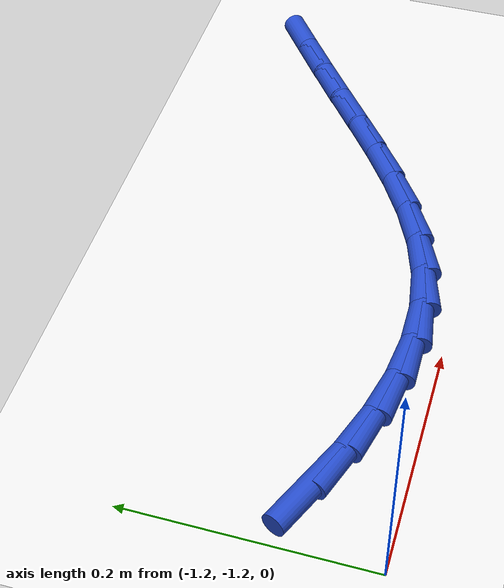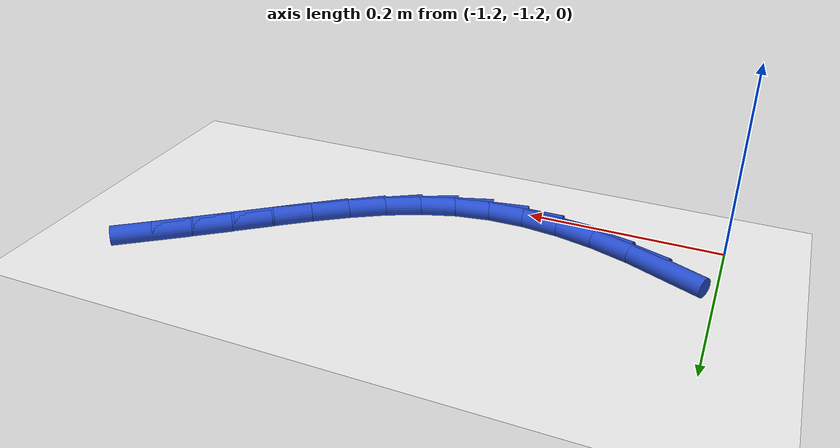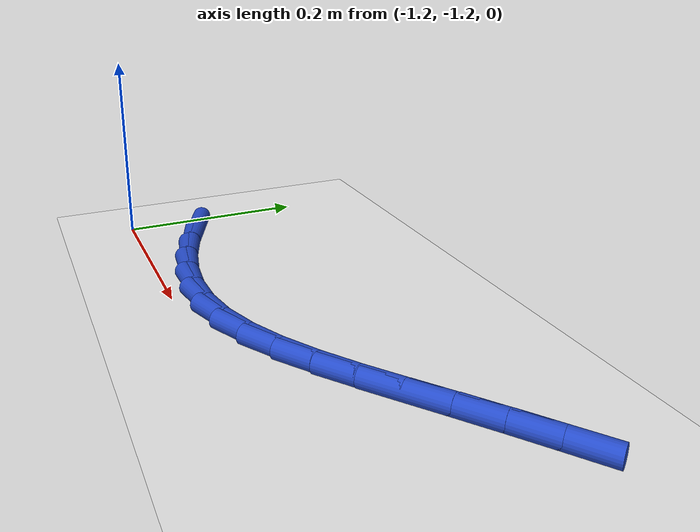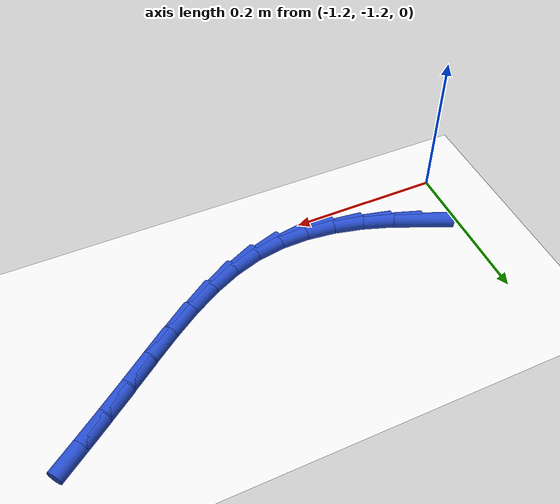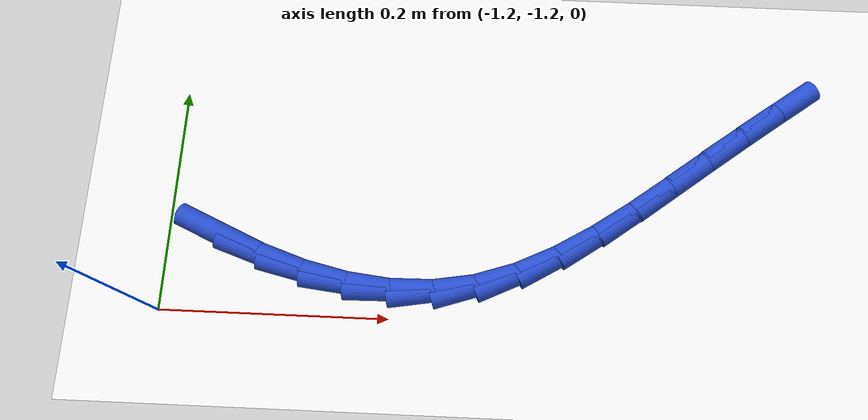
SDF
<sdf version="1.6">
 <world name="default">
  <model name="ground_plane">
   <static>1</static>
   <link name="link">
    <collision name="collision">
     <geometry><plane><normal>0 0 1</normal><size>100 100</size></plane></geometry>
     <surface><friction><ode><mu>100</mu><mu2>50</mu2></ode></friction></surface>
    </collision>
    <visual name="visual">
     <cast_shadows>0</cast_shadows>
     <geometry><plane><normal>0 0 1</normal><size>100 100</size></plane></geometry>
     <material>
      <script><uri>file://media/materials/scripts/gazebo.material</uri><name>Gazebo/WhiteGlow</name></script>
     </material>
    </visual>
   </link>
  </model>
  <model name="line">
   <link name="link_134">
    <pose>-1.1530554890714027 -1.1324915355786798 0.01 0 1.57 -0.4160192202967216</pose>
    <collision name="collision">
     <geometry><cylinder><radius>0.01</radius><length>0.08</length></cylinder></geometry>
    </collision>
    <visual name="visual">
     <material>
      <script><name>Gazebo/Blue</name><uri>file://media/materials/scripts/gazebo.material</uri></script>
     </material>
     <geometry><cylinder><radius>0.01</radius><length>0.08</length></cylinder></geometry>
    </visual>
   </link>
   <link name="link_135">
    <pose>-1.115134334700244 -1.1492453419702096 0.01 0 1.57 -0.3296178988582223</pose>
    <collision name="collision">
     <geometry><cylinder><radius>0.01</radius><length>0.08</length></cylinder></geometry>
    </collision>
    <visual name="visual">
     <material>
      <script><name>Gazebo/Blue</name><uri>file://media/materials/scripts/gazebo.material</uri></script>
     </material>
     <geometry><cylinder><radius>0.01</radius><length>0.08</length></cylinder></geometry>
    </visual>
   </link>
   <link name="link_136">
    <pose>-1.0768413957078136 -1.162345279540819 0.01 0 1.57 -0.2303732233834434</pose>
    <collision name="collision">
     <geometry><cylinder><radius>0.01</radius><length>0.08</length></cylinder></geometry>
    </collision>
    <visual name="visual">
     <material>
      <script><name>Gazebo/Blue</name><uri>file://media/materials/scripts/gazebo.material</uri></script>
     </material>
     <geometry><cylinder><radius>0.01</radius><length>0.08</length></cylinder></geometry>
    </visual>
   </link>
   <link name="link_137">
    <pose>-1.0385020595597492 -1.1713372755448566 0.01 0 1.57 -0.1158722450889593</pose>
    <collision name="collision">
     <geometry><cylinder><radius>0.01</radius><length>0.08</length></cylinder></geometry>
    </collision>
    <visual name="visual">
     <material>
      <script><name>Gazebo/Blue</name><uri>file://media/materials/scripts/gazebo.material</uri></script>
     </material>
     <geometry><cylinder><radius>0.01</radius><length>0.08</length></cylinder></geometry>
    </visual>
   </link>
   <link name="link_138">
    <pose>-1.0004417137216906 -1.1757672572366693 0.01 0 1.57 0.015646572934153558</pose>
    <collision name="collision">
     <geometry><cylinder><radius>0.01</radius><length>0.08</length></cylinder></geometry>
    </collision>
    <visual name="visual">
     <material>
      <script><name>Gazebo/Blue</name><uri>file://media/materials/scripts/gazebo.material</uri></script>
     </material>
     <geometry><cylinder><radius>0.01</radius><length>0.08</length></cylinder></geometry>
    </visual>
   </link>
   <link name="link_139">
    <pose>-0.9629857456592746 -1.1751811518706046 0.01 0 1.57 0.16430550077347683</pose>
    <collision name="collision">
     <geometry><cylinder><radius>0.01</radius><length>0.08</length></cylinder></geometry>
    </collision>
    <visual name="visual">
     <material>
      <script><name>Gazebo/Blue</name><uri>file://media/materials/scripts/gazebo.material</uri></script>
     </material>
     <geometry><cylinder><radius>0.01</radius><length>0.08</length></cylinder></geometry>
    </visual>
   </link>
   <link name="link_140">
    <pose>-0.9264594701361728 -1.169125088448433 0.01 0 1.57 0.3182248023770137</pose>
    <collision name="collision">
     <geometry><cylinder><radius>0.01</radius><length>0.08</length></cylinder></geometry>
    </collision>
    <visual name="visual">
     <material>
      <script><name>Gazebo/Blue</name><uri>file://media/materials/scripts/gazebo.material</uri></script>
     </material>
     <geometry><cylinder><radius>0.01</radius><length>0.08</length></cylinder></geometry>
    </visual>
   </link>
   <link name="link_141">
    <pose>-0.8910719748836389 -1.1574677251282985 0.01 0 1.57 0.4452732070496327</pose>
    <collision name="collision">
     <geometry><cylinder><radius>0.01</radius><length>0.08</length></cylinder></geometry>
    </collision>
    <visual name="visual">
     <material>
      <script><name>Gazebo/Blue</name><uri>file://media/materials/scripts/gazebo.material</uri></script>
     </material>
     <geometry><cylinder><radius>0.01</radius><length>0.08</length></cylinder></geometry>
    </visual>
   </link>
   <link name="link_142">
    <pose>-0.8566802869544414 -1.1410546858504256 0.01 0 1.57 0.5398867245909845</pose>
    <collision name="collision">
     <geometry><cylinder><radius>0.01</radius><length>0.08</length></cylinder></geometry>
    </collision>
    <visual name="visual">
     <material>
      <script><name>Gazebo/Blue</name><uri>file://media/materials/scripts/gazebo.material</uri></script>
     </material>
     <geometry><cylinder><radius>0.01</radius><length>0.08</length></cylinder></geometry>
    </visual>
   </link>
   <link name="link_143">
    <pose>-0.8230750270594804 -1.1209158716631797 0.01 0 1.57 0.6049099667465359</pose>
    <collision name="collision">
     <geometry><cylinder><radius>0.01</radius><length>0.08</length></cylinder></geometry>
    </collision>
    <visual name="visual">
     <material>
      <script><name>Gazebo/Blue</name><uri>file://media/materials/scripts/gazebo.material</uri></script>
     </material>
     <geometry><cylinder><radius>0.01</radius><length>0.08</length></cylinder></geometry>
    </visual>
   </link>
   <link name="link_144">
    <pose>-0.7900468159096536 -1.0980811836149267 0.01 0 1.57 0.6436040672282225</pose>
    <collision name="collision">
     <geometry><cylinder><radius>0.01</radius><length>0.08</length></cylinder></geometry>
    </collision>
    <visual name="visual">
     <material>
      <script><name>Gazebo/Blue</name><uri>file://media/materials/scripts/gazebo.material</uri></script>
     </material>
     <geometry><cylinder><radius>0.01</radius><length>0.08</length></cylinder></geometry>
    </visual>
   </link>
   <link name="link_145">
    <pose>-0.7573862742158594 -1.0735805227540325 0.01 0 1.57 0.6582998906066243</pose>
    <collision name="collision">
     <geometry><cylinder><radius>0.01</radius><length>0.08</length></cylinder></geometry>
    </collision>
    <visual name="visual">
     <material>
      <script><name>Gazebo/Blue</name><uri>file://media/materials/scripts/gazebo.material</uri></script>
     </material>
     <geometry><cylinder><radius>0.01</radius><length>0.08</length></cylinder></geometry>
    </visual>
   </link>
   <link name="link_146">
    <pose>-0.7248840226889958 -1.0484437901288617 0.01 0 1.57 0.6522210994865131</pose>
    <collision name="collision">
     <geometry><cylinder><radius>0.01</radius><length>0.08</length></cylinder></geometry>
    </collision>
    <visual name="visual">
     <material>
      <script><name>Gazebo/Blue</name><uri>file://media/materials/scripts/gazebo.material</uri></script>
     </material>
     <geometry><cylinder><radius>0.01</radius><length>0.08</length></cylinder></geometry>
    </visual>
   </link>
   <link name="link_147">
    <pose>-0.69235528307123 -1.0236011027993066 0.01 0 1.57 0.6418849123533492</pose>
    <collision name="collision">
     <geometry><cylinder><radius>0.01</radius><length>0.08</length></cylinder></geometry>
    </collision>
    <visual name="visual">
     <material>
      <script><name>Gazebo/Blue</name><uri>file://media/materials/scripts/gazebo.material</uri></script>
     </material>
     <geometry><cylinder><radius>0.01</radius><length>0.08</length></cylinder></geometry>
    </visual>
   </link>
   <link name="link_148">
    <pose>-0.659793041022688 -0.9992615514362827 0.01 0 1.57 0.6346009956084246</pose>
    <collision name="collision">
     <geometry><cylinder><radius>0.01</radius><length>0.08</length></cylinder></geometry>
    </collision>
    <visual name="visual">
     <material>
      <script><name>Gazebo/Blue</name><uri>file://media/materials/scripts/gazebo.material</uri></script>
     </material>
     <geometry><cylinder><radius>0.01</radius><length>0.08</length></cylinder></geometry>
    </visual>
   </link>
  </model>
 </world>
</sdf>
